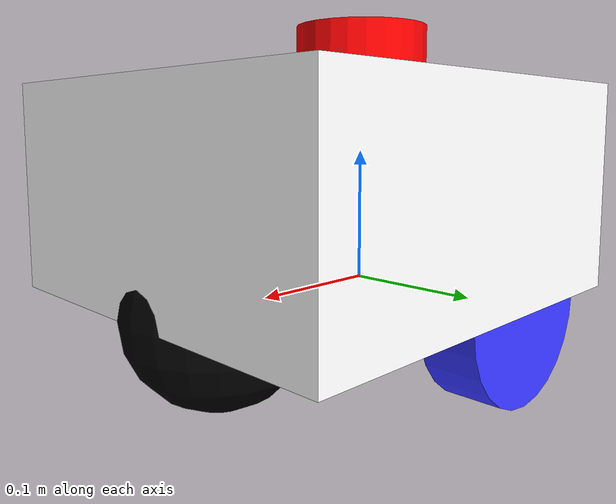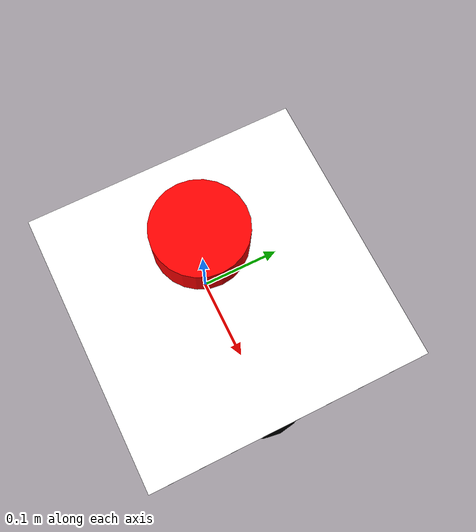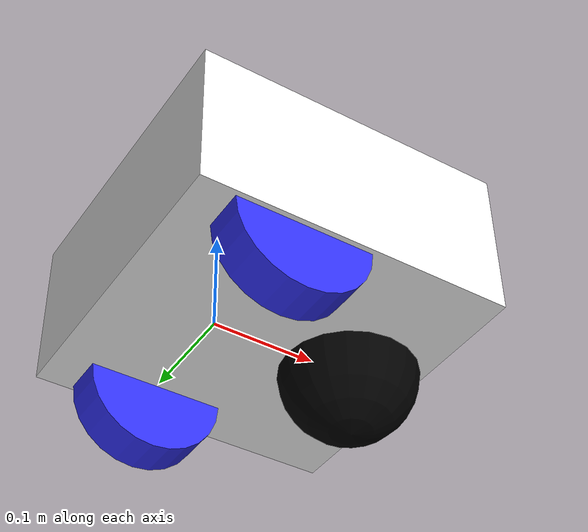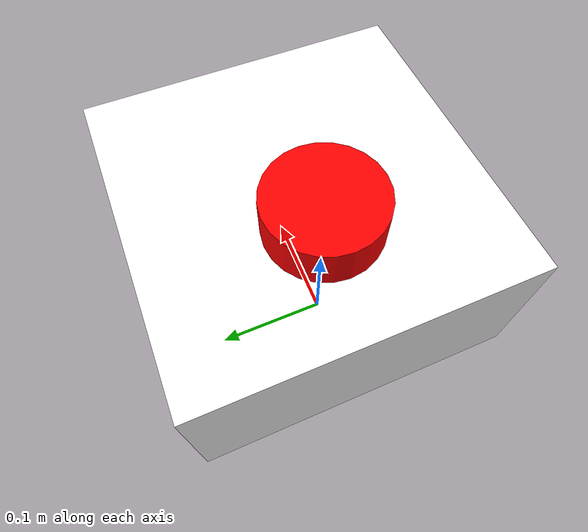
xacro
<?xml version="1.0"?>
<robot xmlns:xacro="http://www.ros.org/wiki/xacro"  name="robot">

   <xacro:arg name="use_ros2_control" default="true"/>
   <xacro:include filename="robot_core.xacro" />
   <xacro:include filename="lidar.xacro"/>

   <xacro:if value="$(arg use_ros2_control)">
      <xacro:include filename="ros2_control.xacro"/>
   </xacro:if>
   <xacro:unless value="$(arg use_ros2_control)">
      <xacro:include filename="gazebo_control.xacro"/>
   </xacro:unless>

</robot>

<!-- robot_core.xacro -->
<robot xmlns:xacro="http://www.ros.org/wiki/xacro" >

    <xacro:include filename="inertial_macros.xacro"/>

    <material name="white">
        <color rgba="1 1 1 1" />
    </material>

    <material name="orange">
        <color rgba="1 0.3 0.1 1"/>
    </material>

    <material name="blue">
        <color rgba="0.2 0.2 1 1"/>
    </material>

    <material name="black">
        <color rgba="0 0 0 1"/>
    </material>

    <material name="red">
        <color rgba="1 0 0 1"/>
    </material>

    <!-- BASE LINK -->

    <link name="base_link"/>

    <link name="base_footprint"/>

    <joint name="base_footprint_joint" type="fixed">
        <parent link="base_link"/>
        <child link="base_footprint"/>
        <origin xyz="0 0 0" rpy="0 0 0"/>
    </joint>

    <!-- CHASSIS LINK -->

    <joint name="chassis_joint" type="fixed">
        <parent link="base_link"/>
        <child link="chassis"/>
        <origin xyz="-0.1 0 0"/>
    </joint>

    <link name="chassis">
        <visual>
            <origin xyz="0.15 0 0.075"/>
            <geometry>
                <box size="0.3 0.3 0.15"/>
            </geometry>
            <material name="white"/>
        </visual>
        <collision>
            <origin xyz="0.15 0 0.075"/>
            <geometry>
                <box size="0.3 0.3 0.15"/>
            </geometry>
        </collision>
        <xacro:inertial_box mass="0.5" x="0.3" y="0.3" z="0.15">
            <origin xyz="0.15 0 0.075" rpy="0 0 0"/>
        </xacro:inertial_box>
    </link>

    <!-- LEFT WHEEL LINK -->

    <joint name="left_wheel_joint" type="continuous">
        <parent link="base_link"/>
        <child link="left_wheel"/>
        <origin xyz="0 0.125 0" rpy="-${pi/2} 0 0" />
        <axis xyz="0 0 1"/>
    </joint>

    <link name="left_wheel">
        <visual>
            <geometry>
                <cylinder radius="0.065" length="0.04"/>
            </geometry>
            <material name="blue"/>
        </visual>
        <collision>
            <geometry>
                <cylinder radius="0.065" length="0.04"/>
            </geometry>
        </collision>
        <xacro:inertial_cylinder mass="0.1" length="0.04" radius="0.065">
            <origin xyz="0 0 0" rpy="0 0 0"/>
        </xacro:inertial_cylinder>
    </link>

    <!-- RIGHT WHEEL LINK -->

    <joint name="right_wheel_joint" type="continuous">
        <parent link="base_link"/>
        <child link="right_wheel"/>
        <origin xyz="0 -0.125 0" rpy="${pi/2} 0 0" />
        <axis xyz="0 0 -1"/>
    </joint>

    <link name="right_wheel">
        <visual>
            <geometry>
                <cylinder radius="0.065" length="0.04"/>
            </geometry>
            <material name="blue"/>
        </visual>
        <collision>
            <geometry>
                <cylinder radius="0.065" length="0.04"/>
            </geometry>
        </collision>
        <xacro:inertial_cylinder mass="0.1" length="0.04" radius="0.065">
            <origin xyz="0 0 0" rpy="0 0 0"/>
        </xacro:inertial_cylinder>
    </link>

    <!-- CASTER WHEEL LINK -->

    <joint name="caster_wheel_joint" type="fixed">
        <parent link="chassis"/>
        <child link="caster_wheel"/>
        <origin xyz="0.24 0 0"/>
    </joint>

    <link name="caster_wheel">
        <visual>
            <geometry>
                <sphere radius="0.065"/>
            </geometry>
            <material name="black"/>
        </visual>
        <collision>
            <geometry>
                <sphere radius="0.065"/>
            </geometry>
        </collision>
        <xacro:inertial_sphere mass="0.1" radius="0.05">
            <origin xyz="0 0 0" rpy="0 0 0"/>
        </xacro:inertial_sphere>
    </link>

    <gazebo reference='chassis'>
        <material>Gazebo/White</material>
    </gazebo>

    <gazebo reference='left_wheel'>
        <material>Gazebo/Blue</material>
        <mu1>0.1</mu1>
        <mu2>0.1</mu2>
    </gazebo>

    <gazebo reference='right_wheel'>
        <material>Gazebo/Blue</material>
        <mu1>0.1</mu1>
        <mu2>0.1</mu2>
    </gazebo>

    <gazebo reference='caster_wheel'>
        <material>Gazebo/Black</material>
        <mu1>0.1</mu1>
        <mu2>0.1</mu2>
    </gazebo>

</robot>

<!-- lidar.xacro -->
<robot xmlns:xacro="http://www.ros.org/wiki/xacro" >
    <joint name="laser_joint" type="fixed">
        <parent link="chassis" />
        <child link="laser_frame"/>
        <origin xyz="0.1 0 0.175" rpy="0 0 0"/>
    </joint>

    <link name="laser_frame">
        <visual>
            <geometry>
                <cylinder radius="0.05" length="0.04"/>
            </geometry>
            <material name="red"/>
        </visual>
        <collision>
            <geometry>
                <cylinder radius="0.05" length="0.04"/>
            </geometry>
        </collision>
        <xacro:inertial_cylinder mass="0.1" length="0.04" radius="0.05">
            <origin xyz="0 0 0" rpy="0 0 0"/>
        </xacro:inertial_cylinder>
    </link>

    <gazebo reference="laser_frame">
        <sensor name="laser" type="ray">
            <pose>0 0 0 0 0 0</pose>
            <visualize>true</visualize>
            <update_rate>10</update_rate>
            <ray>
                <scan>
                    <horizontal>
                        <samples>640</samples>
                        <resolution>1</resolution>
                        <min_angle>-3.14159</min_angle>
                        <max_angle>3.14159</max_angle>
                    </horizontal>
                </scan>
                <range>
                    <min>0.12</min>
                    <max>3.5</max>
                    <resolution>0.01</resolution>
                </range>
            </ray>
            <plugin name="laser_controller" filename="libgazebo_ros_ray_sensor.so">
                <ros>
                    <argument>~/out:=scan</argument>
                </ros>
                <output_type>sensor_msgs/LaserScan</output_type>
                <frameName>laser_frame</frameName>

            </plugin>
        </sensor>
    </gazebo>

</robot>
